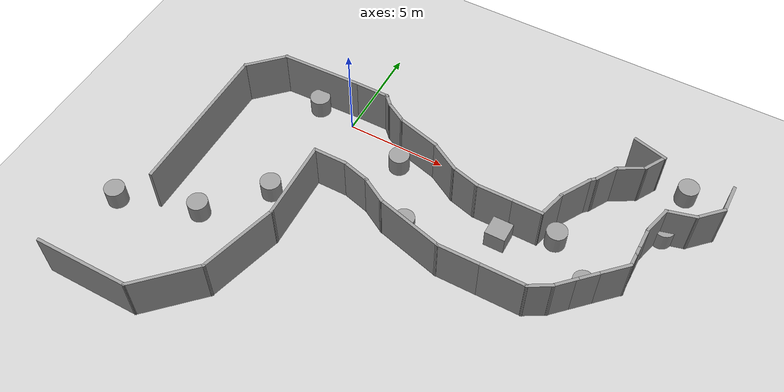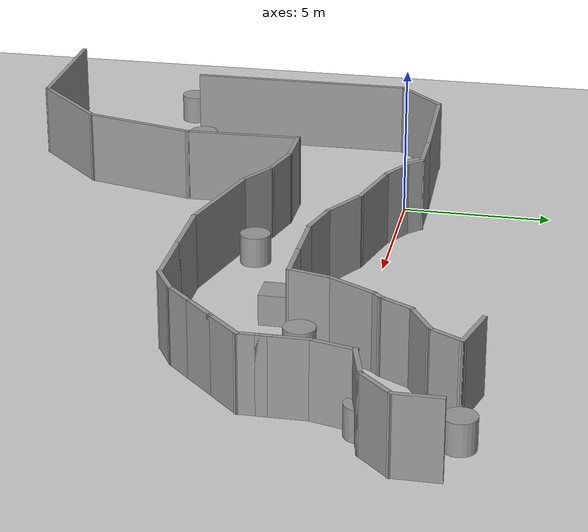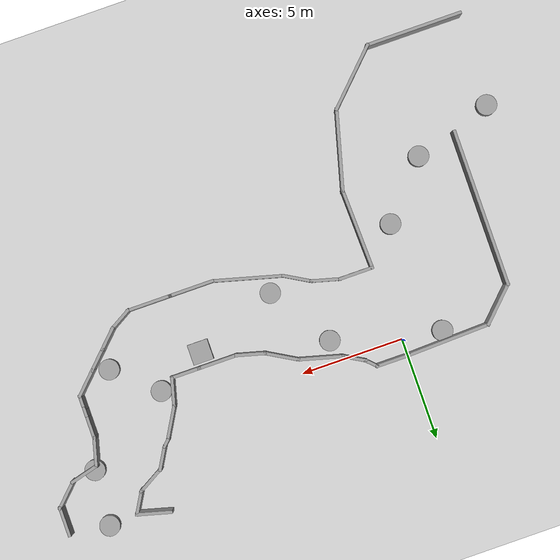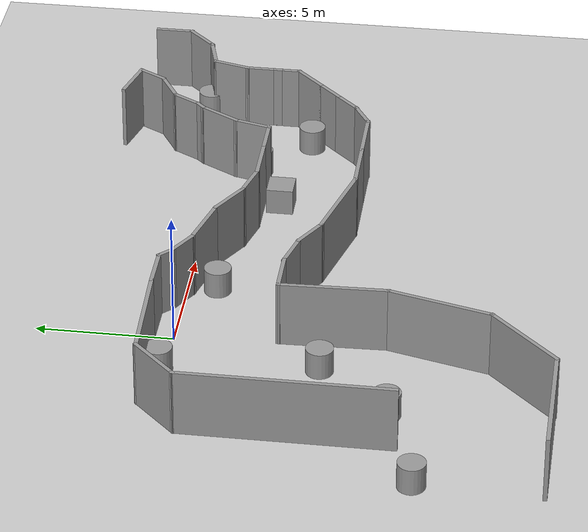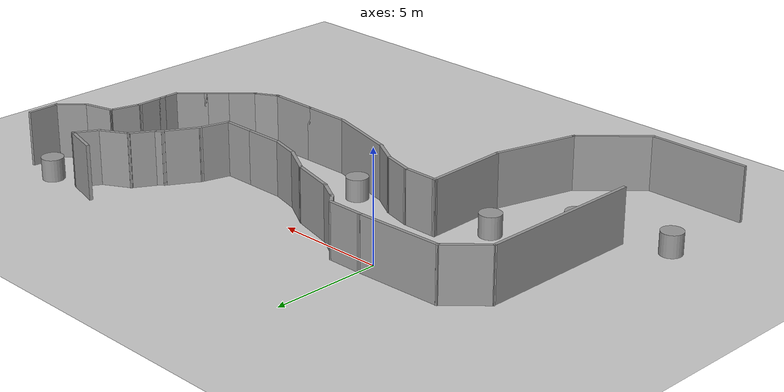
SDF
<sdf version="1.7">
 <world name="default">
  <model name="ground_plane">
   <static>1</static>
   <link name="link">
    <collision name="collision">
     <geometry><plane><normal>0 0 1</normal><size>100 100</size></plane></geometry>
     <surface><friction><ode><mu>100</mu><mu2>50</mu2></ode></friction></surface>
    </collision>
    <visual name="visual">
     <cast_shadows>0</cast_shadows>
     <geometry><plane><normal>0 0 1</normal><size>100 100</size></plane></geometry>
     <material>
      <script><uri>file://media/materials/scripts/gazebo.material</uri><name>Gazebo/Grey</name></script>
     </material>
    </visual>
   </link>
  </model>
  <model name="racetrackgap">
   <pose>0.224585 2.63558 0 0 -0 0</pose>
   <link name="Wall_10">
    <collision name="Wall_10_Collision">
     <geometry><box><size>1.25 0.15 2.5</size></box></geometry>
     <pose>0 0 1.25 0 -0 0</pose>
    </collision>
    <visual name="Wall_10_Visual">
     <pose>0 0 1.25 0 -0 0</pose>
     <geometry><box><size>1.25 0.15 2.5</size></box></geometry>
     <material>
      <script><uri>file://media/materials/scripts/gazebo.material</uri><name>Gazebo/Grey</name></script>
      <ambient>1 1 1 1</ambient>
     </material>
     <meta><layer>0</layer></meta>
    </visual>
    <pose>12.9009 -7.28003 0 0 -0 0.785398</pose>
   </link>
   <link name="Wall_11">
    <collision name="Wall_11_Collision">
     <geometry><box><size>1.25 0.15 2.5</size></box></geometry>
     <pose>0 0 1.25 0 -0 0</pose>
    </collision>
    <visual name="Wall_11_Visual">
     <pose>0 0 1.25 0 -0 0</pose>
     <geometry><box><size>1.25 0.15 2.5</size></box></geometry>
     <material>
      <script><uri>file://media/materials/scripts/gazebo.material</uri><name>Gazebo/Grey</name></script>
      <ambient>1 1 1 1</ambient>
     </material>
     <meta><layer>0</layer></meta>
    </visual>
    <pose>13.6788 -6.50221 0 0 -0 0.785398</pose>
   </link>
   <link name="Wall_117">
    <collision name="Wall_117_Collision">
     <geometry><box><size>7.75 0.15 2.5</size></box></geometry>
     <pose>0 0 1.25 0 -0 0</pose>
    </collision>
    <visual name="Wall_117_Visual">
     <pose>0 0 1.25 0 -0 0</pose>
     <geometry><box><size>7.75 0.15 2.5</size></box></geometry>
     <material>
      <script><uri>file://media/materials/scripts/gazebo.material</uri><name>Gazebo/Grey</name></script>
      <ambient>1 1 1 1</ambient>
     </material>
     <meta><layer>0</layer></meta>
    </visual>
    <pose>-5.71308 -7.29502 0 0 -0 1.5708</pose>
   </link>
   <link name="Wall_118">
    <collision name="Wall_118_Collision">
     <geometry><box><size>2.25 0.15 2.5</size></box></geometry>
     <pose>0 0 1.25 0 -0 0</pose>
    </collision>
    <visual name="Wall_118_Visual">
     <pose>0 0 1.25 0 -0 0</pose>
     <geometry><box><size>2.25 0.15 2.5</size></box></geometry>
     <material>
      <script><uri>file://media/materials/scripts/gazebo.material</uri><name>Gazebo/Grey</name></script>
      <ambient>1 1 1 1</ambient>
     </material>
     <meta><layer>0</layer></meta>
    </visual>
    <pose>-4.97062 -2.75255 0 0 -0 0.785398</pose>
   </link>
   <link name="Wall_119">
    <collision name="Wall_119_Collision">
     <geometry><box><size>4.13259 0.15 2.5</size></box></geometry>
     <pose>0 0 1.25 0 -0 0</pose>
    </collision>
    <visual name="Wall_119_Visual">
     <pose>0 0 1.25 0 -0 0</pose>
     <geometry><box><size>4.13259 0.15 2.5</size></box></geometry>
     <material>
      <script><uri>file://media/materials/scripts/gazebo.material</uri><name>Gazebo/Grey</name></script>
      <ambient>1 1 1 1</ambient>
     </material>
     <meta><layer>0</layer></meta>
    </visual>
    <pose>-2.23793 -1.945 0 0 -0 0.032696</pose>
   </link>
   <link name="Wall_12">
    <collision name="Wall_12_Collision">
     <geometry><box><size>1.5 0.15 2.5</size></box></geometry>
     <pose>0 0 1.25 0 -0 0</pose>
    </collision>
    <visual name="Wall_12_Visual">
     <pose>0 0 1.25 0 -0 0</pose>
     <geometry><box><size>1.5 0.15 2.5</size></box></geometry>
     <material>
      <script><uri>file://media/materials/scripts/gazebo.material</uri><name>Gazebo/Grey</name></script>
      <ambient>1 1 1 1</ambient>
     </material>
     <meta><layer>0</layer></meta>
    </visual>
    <pose>14.545 -5.63601 0 0 -0 0.785398</pose>
   </link>
   <link name="Wall_13">
    <collision name="Wall_13_Collision">
     <geometry><box><size>0.75 0.15 2.5</size></box></geometry>
     <pose>0 0 1.25 0 -0 0</pose>
    </collision>
    <visual name="Wall_13_Visual">
     <pose>0 0 1.25 0 -0 0</pose>
     <geometry><box><size>0.75 0.15 2.5</size></box></geometry>
     <material>
      <script><uri>file://media/materials/scripts/gazebo.material</uri><name>Gazebo/Grey</name></script>
      <ambient>1 1 1 1</ambient>
     </material>
     <meta><layer>0</layer></meta>
    </visual>
    <pose>15.0223 -4.85871 0 0 -0 1.5708</pose>
   </link>
   <link name="Wall_14">
    <collision name="Wall_14_Collision">
     <geometry><box><size>0.5 0.15 2.5</size></box></geometry>
     <pose>0 0 1.25 0 -0 0</pose>
    </collision>
    <visual name="Wall_14_Visual">
     <pose>0 0 1.25 0 -0 0</pose>
     <geometry><box><size>0.5 0.15 2.5</size></box></geometry>
     <material>
      <script><uri>file://media/materials/scripts/gazebo.material</uri><name>Gazebo/Grey</name></script>
      <ambient>1 1 1 1</ambient>
     </material>
     <meta><layer>0</layer></meta>
    </visual>
    <pose>15.0223 -4.38371 0 0 -0 1.5708</pose>
   </link>
   <link name="Wall_15">
    <collision name="Wall_15_Collision">
     <geometry><box><size>1.25 0.15 2.5</size></box></geometry>
     <pose>0 0 1.25 0 -0 0</pose>
    </collision>
    <visual name="Wall_15_Visual">
     <pose>0 0 1.25 0 -0 0</pose>
     <geometry><box><size>1.25 0.15 2.5</size></box></geometry>
     <material>
      <script><uri>file://media/materials/scripts/gazebo.material</uri><name>Gazebo/Grey</name></script>
      <ambient>1 1 1 1</ambient>
     </material>
     <meta><layer>0</layer></meta>
    </visual>
    <pose>15.0223 -3.65871 0 0 -0 1.5708</pose>
   </link>
   <link name="Wall_16">
    <collision name="Wall_16_Collision">
     <geometry><box><size>1.5 0.15 2.5</size></box></geometry>
     <pose>0 0 1.25 0 -0 0</pose>
    </collision>
    <visual name="Wall_16_Visual">
     <pose>0 0 1.25 0 -0 0</pose>
     <geometry><box><size>1.5 0.15 2.5</size></box></geometry>
     <material>
      <script><uri>file://media/materials/scripts/gazebo.material</uri><name>Gazebo/Grey</name></script>
      <ambient>1 1 1 1</ambient>
     </material>
     <meta><layer>0</layer></meta>
    </visual>
    <pose>15.197 -2.45671 0 0 -0 1.309</pose>
   </link>
   <link name="Wall_17">
    <collision name="Wall_17_Collision">
     <geometry><box><size>1.5 0.15 2.5</size></box></geometry>
     <pose>0 0 1.25 0 -0 0</pose>
    </collision>
    <visual name="Wall_17_Visual">
     <pose>0 0 1.25 0 -0 0</pose>
     <geometry><box><size>1.5 0.15 2.5</size></box></geometry>
     <material>
      <script><uri>file://media/materials/scripts/gazebo.material</uri><name>Gazebo/Grey</name></script>
      <ambient>1 1 1 1</ambient>
     </material>
     <meta><layer>0</layer></meta>
    </visual>
    <pose>16.0237 -1.63001 0 0 -0 0.261799</pose>
   </link>
   <link name="Wall_18">
    <collision name="Wall_18_Collision">
     <geometry><box><size>1.5 0.15 2.5</size></box></geometry>
     <pose>0 0 1.25 0 -0 0</pose>
    </collision>
    <visual name="Wall_18_Visual">
     <pose>0 0 1.25 0 -0 0</pose>
     <geometry><box><size>1.5 0.15 2.5</size></box></geometry>
     <material>
      <script><uri>file://media/materials/scripts/gazebo.material</uri><name>Gazebo/Grey</name></script>
      <ambient>1 1 1 1</ambient>
     </material>
     <meta><layer>0</layer></meta>
    </visual>
    <pose>17.153 -0.978009 0 0 -0 0.785398</pose>
   </link>
   <link name="Wall_19">
    <collision name="Wall_19_Collision">
     <geometry><box><size>1.5 0.15 2.5</size></box></geometry>
     <pose>0 0 1.25 0 -0 0</pose>
    </collision>
    <visual name="Wall_19_Visual">
     <pose>0 0 1.25 0 -0 0</pose>
     <geometry><box><size>1.5 0.15 2.5</size></box></geometry>
     <material>
      <script><uri>file://media/materials/scripts/gazebo.material</uri><name>Gazebo/Grey</name></script>
      <ambient>1 1 1 1</ambient>
     </material>
     <meta><layer>0</layer></meta>
    </visual>
    <pose>17.6303 0.174289 0 0 -0 1.5708</pose>
   </link>
   <link name="Wall_3">
    <collision name="Wall_3_Collision">
     <geometry><box><size>1.75 0.15 2.5</size></box></geometry>
     <pose>0 0 1.25 0 -0 0</pose>
    </collision>
    <visual name="Wall_3_Visual">
     <pose>0 0 1.25 0 -0 0</pose>
     <geometry><box><size>1.75 0.15 2.5</size></box></geometry>
     <material>
      <script><uri>file://media/materials/scripts/gazebo.material</uri><name>Gazebo/Grey</name></script>
      <ambient>1 1 1 1</ambient>
     </material>
     <meta><layer>0</layer></meta>
    </visual>
    <pose>0.850427 -6.32749 0 0 -0 0</pose>
   </link>
   <link name="Wall_4">
    <collision name="Wall_4_Collision">
     <geometry><box><size>1.5 0.15 2.5</size></box></geometry>
     <pose>0 0 1.25 0 -0 0</pose>
    </collision>
    <visual name="Wall_4_Visual">
     <pose>0 0 1.25 0 -0 0</pose>
     <geometry><box><size>1.5 0.15 2.5</size></box></geometry>
     <material>
      <script><uri>file://media/materials/scripts/gazebo.material</uri><name>Gazebo/Grey</name></script>
      <ambient>1 1 1 1</ambient>
     </material>
     <meta><layer>0</layer></meta>
    </visual>
    <pose>2.30243 -6.50219 0 0 -0 -0.261799</pose>
   </link>
   <link name="Wall_5">
    <collision name="Wall_5_Collision">
     <geometry><box><size>1.5 0.15 2.5</size></box></geometry>
     <pose>0 0 1.25 0 -0 0</pose>
    </collision>
    <visual name="Wall_5_Visual">
     <pose>0 0 1.25 0 -0 0</pose>
     <geometry><box><size>1.5 0.15 2.5</size></box></geometry>
     <material>
      <script><uri>file://media/materials/scripts/gazebo.material</uri><name>Gazebo/Grey</name></script>
      <ambient>1 1 1 1</ambient>
     </material>
     <meta><layer>0</layer></meta>
    </visual>
    <pose>3.53899 -7.0144 0 0 -0 -0.523599</pose>
   </link>
   <link name="Wall_6">
    <collision name="Wall_6_Collision">
     <geometry><box><size>3.5 0.15 2.5</size></box></geometry>
     <pose>0 0 1.25 0 -0 0</pose>
    </collision>
    <visual name="Wall_6_Visual">
     <pose>0 0 1.25 0 -0 0</pose>
     <geometry><box><size>3.5 0.15 2.5</size></box></geometry>
     <material>
      <script><uri>file://media/materials/scripts/gazebo.material</uri><name>Gazebo/Grey</name></script>
      <ambient>1 1 1 1</ambient>
     </material>
     <meta><layer>0</layer></meta>
    </visual>
    <pose>5.74149 -7.78542 0 0 -0 -0.261799</pose>
   </link>
   <link name="Wall_66">
    <collision name="Wall_66_Collision">
     <geometry><box><size>4.75 0.15 2.5</size></box></geometry>
     <pose>0 0 1.25 0 -0 0</pose>
    </collision>
    <visual name="Wall_66_Visual">
     <pose>0 0 1.25 0 -0 0</pose>
     <geometry><box><size>4.75 0.15 2.5</size></box></geometry>
     <material>
      <script><uri>file://media/materials/scripts/gazebo.material</uri><name>Gazebo/Grey</name></script>
      <ambient>1 1 1 1</ambient>
     </material>
     <meta><layer>0</layer></meta>
    </visual>
    <pose>-5.4985 -16.2859 0 0 -0 0</pose>
   </link>
   <link name="Wall_67">
    <collision name="Wall_67_Collision">
     <geometry><box><size>3.5 0.15 2.5</size></box></geometry>
     <pose>0 0 1.25 0 -0 0</pose>
    </collision>
    <visual name="Wall_67_Visual">
     <pose>0 0 1.25 0 -0 0</pose>
     <geometry><box><size>3.5 0.15 2.5</size></box></geometry>
     <material>
      <script><uri>file://media/materials/scripts/gazebo.material</uri><name>Gazebo/Grey</name></script>
      <ambient>1 1 1 1</ambient>
     </material>
     <meta><layer>0</layer></meta>
    </visual>
    <pose>-2.0141 -15.1015 0 0 -0 0.785398</pose>
   </link>
   <link name="Wall_68">
    <collision name="Wall_68_Collision">
     <geometry><box><size>4 0.15 2.5</size></box></geometry>
     <pose>0 0 1.25 0 -0 0</pose>
    </collision>
    <visual name="Wall_68_Visual">
     <pose>0 0 1.25 0 -0 0</pose>
     <geometry><box><size>4 0.15 2.5</size></box></geometry>
     <material>
      <script><uri>file://media/materials/scripts/gazebo.material</uri><name>Gazebo/Grey</name></script>
      <ambient>1 1 1 1</ambient>
     </material>
     <meta><layer>0</layer></meta>
    </visual>
    <pose>-0.331465 -12.0576 0 0 -0 1.309</pose>
   </link>
   <link name="Wall_69">
    <collision name="Wall_69_Collision">
     <geometry><box><size>4.02249 0.15 2.5</size></box></geometry>
     <pose>0 0 1.25 0 -0 0</pose>
    </collision>
    <visual name="Wall_69_Visual">
     <pose>0 0 1.25 0 -0 0</pose>
     <geometry><box><size>4.02249 0.15 2.5</size></box></geometry>
     <material>
      <script><uri>file://media/materials/scripts/gazebo.material</uri><name>Gazebo/Grey</name></script>
      <ambient>1 1 1 1</ambient>
     </material>
     <meta><layer>0</layer></meta>
    </visual>
    <pose>0.108594 -8.26286 0 0 -0 1.60084</pose>
   </link>
   <link name="Wall_7">
    <collision name="Wall_7_Collision">
     <geometry><box><size>2.25 0.15 2.5</size></box></geometry>
     <pose>0 0 1.25 0 -0 0</pose>
    </collision>
    <visual name="Wall_7_Visual">
     <pose>0 0 1.25 0 -0 0</pose>
     <geometry><box><size>2.25 0.15 2.5</size></box></geometry>
     <material>
      <script><uri>file://media/materials/scripts/gazebo.material</uri><name>Gazebo/Grey</name></script>
      <ambient>1 1 1 1</ambient>
     </material>
     <meta><layer>0</layer></meta>
    </visual>
    <pose>8.40941 -8.21894 0 0 -0 0</pose>
   </link>
   <link name="Wall_71">
    <collision name="Wall_71_Collision">
     <geometry><box><size>1.75 0.15 2.5</size></box></geometry>
     <pose>0 0 1.25 0 -0 0</pose>
    </collision>
    <visual name="Wall_71_Visual">
     <pose>0 0 1.25 0 -0 0</pose>
     <geometry><box><size>1.75 0.15 2.5</size></box></geometry>
     <material>
      <script><uri>file://media/materials/scripts/gazebo.material</uri><name>Gazebo/Grey</name></script>
      <ambient>1 1 1 1</ambient>
     </material>
     <meta><layer>0</layer></meta>
    </visual>
    <pose>0.552304 -1.8799 0 0 -0 0</pose>
   </link>
   <link name="Wall_72">
    <collision name="Wall_72_Collision">
     <geometry><box><size>0.75 0.15 2.5</size></box></geometry>
     <pose>0 0 1.25 0 -0 0</pose>
    </collision>
    <visual name="Wall_72_Visual">
     <pose>0 0 1.25 0 -0 0</pose>
     <geometry><box><size>0.75 0.15 2.5</size></box></geometry>
     <material>
      <script><uri>file://media/materials/scripts/gazebo.material</uri><name>Gazebo/Grey</name></script>
      <ambient>1 1 1 1</ambient>
     </material>
     <meta><layer>0</layer></meta>
    </visual>
    <pose>1.56444 -2.09203 0 0 -0 -0.785398</pose>
   </link>
   <link name="Wall_73">
    <collision name="Wall_73_Collision">
     <geometry><box><size>1.25 0.15 2.5</size></box></geometry>
     <pose>0 0 1.25 0 -0 0</pose>
    </collision>
    <visual name="Wall_73_Visual">
     <pose>0 0 1.25 0 -0 0</pose>
     <geometry><box><size>1.25 0.15 2.5</size></box></geometry>
     <material>
      <script><uri>file://media/materials/scripts/gazebo.material</uri><name>Gazebo/Grey</name></script>
      <ambient>1 1 1 1</ambient>
     </material>
     <meta><layer>0</layer></meta>
    </visual>
    <pose>2.25288 -2.57917 0 0 -0 -0.523599</pose>
   </link>
   <link name="Wall_74">
    <collision name="Wall_74_Collision">
     <geometry><box><size>2.25 0.15 2.5</size></box></geometry>
     <pose>0 0 1.25 0 -0 0</pose>
    </collision>
    <visual name="Wall_74_Visual">
     <pose>0 0 1.25 0 -0 0</pose>
     <geometry><box><size>2.25 0.15 2.5</size></box></geometry>
     <material>
      <script><uri>file://media/materials/scripts/gazebo.material</uri><name>Gazebo/Grey</name></script>
      <ambient>1 1 1 1</ambient>
     </material>
     <meta><layer>0</layer></meta>
    </visual>
    <pose>3.74342 -3.12593 0 0 -0 -0.261799</pose>
   </link>
   <link name="Wall_75">
    <collision name="Wall_75_Collision">
     <geometry><box><size>1.75 0.15 2.5</size></box></geometry>
     <pose>0 0 1.25 0 -0 0</pose>
    </collision>
    <visual name="Wall_75_Visual">
     <pose>0 0 1.25 0 -0 0</pose>
     <geometry><box><size>1.75 0.15 2.5</size></box></geometry>
     <material>
      <script><uri>file://media/materials/scripts/gazebo.material</uri><name>Gazebo/Grey</name></script>
      <ambient>1 1 1 1</ambient>
     </material>
     <meta><layer>0</layer></meta>
    </visual>
    <pose>5.45046 -3.79769 0 0 -0 -0.523599</pose>
   </link>
   <link name="Wall_76">
    <collision name="Wall_76_Collision">
     <geometry><box><size>1.5 0.15 2.5</size></box></geometry>
     <pose>0 0 1.25 0 -0 0</pose>
    </collision>
    <visual name="Wall_76_Visual">
     <pose>0 0 1.25 0 -0 0</pose>
     <geometry><box><size>1.5 0.15 2.5</size></box></geometry>
     <material>
      <script><uri>file://media/materials/scripts/gazebo.material</uri><name>Gazebo/Grey</name></script>
      <ambient>1 1 1 1</ambient>
     </material>
     <meta><layer>0</layer></meta>
    </visual>
    <pose>6.79528 -4.37239 0 0 -0 -0.261799</pose>
   </link>
   <link name="Wall_77">
    <collision name="Wall_77_Collision">
     <geometry><box><size>2 0.15 2.5</size></box></geometry>
     <pose>0 0 1.25 0 -0 0</pose>
    </collision>
    <visual name="Wall_77_Visual">
     <pose>0 0 1.25 0 -0 0</pose>
     <geometry><box><size>2 0.15 2.5</size></box></geometry>
     <material>
      <script><uri>file://media/materials/scripts/gazebo.material</uri><name>Gazebo/Grey</name></script>
      <ambient>1 1 1 1</ambient>
     </material>
     <meta><layer>0</layer></meta>
    </visual>
    <pose>8.37228 -4.54709 0 0 -0 0</pose>
   </link>
   <link name="Wall_78">
    <collision name="Wall_78_Collision">
     <geometry><box><size>1.5 0.15 2.5</size></box></geometry>
     <pose>0 0 1.25 0 -0 0</pose>
    </collision>
    <visual name="Wall_78_Visual">
     <pose>0 0 1.25 0 -0 0</pose>
     <geometry><box><size>1.5 0.15 2.5</size></box></geometry>
     <material>
      <script><uri>file://media/materials/scripts/gazebo.material</uri><name>Gazebo/Grey</name></script>
      <ambient>1 1 1 1</ambient>
     </material>
     <meta><layer>0</layer></meta>
    </visual>
    <pose>9.97228 -4.54709 0 0 -0 0</pose>
   </link>
   <link name="Wall_79">
    <collision name="Wall_79_Collision">
     <geometry><box><size>1.5 0.15 2.5</size></box></geometry>
     <pose>0 0 1.25 0 -0 0</pose>
    </collision>
    <visual name="Wall_79_Visual">
     <pose>0 0 1.25 0 -0 0</pose>
     <geometry><box><size>1.5 0.15 2.5</size></box></geometry>
     <material>
      <script><uri>file://media/materials/scripts/gazebo.material</uri><name>Gazebo/Grey</name></script>
      <ambient>1 1 1 1</ambient>
     </material>
     <meta><layer>0</layer></meta>
    </visual>
    <pose>10.822 -3.89509 0 0 -0 1.309</pose>
   </link>
   <link name="Wall_8">
    <collision name="Wall_8_Collision">
     <geometry><box><size>2.25 0.15 2.5</size></box></geometry>
     <pose>0 0 1.25 0 -0 0</pose>
    </collision>
    <visual name="Wall_8_Visual">
     <pose>0 0 1.25 0 -0 0</pose>
     <geometry><box><size>2.25 0.15 2.5</size></box></geometry>
     <material>
      <script><uri>file://media/materials/scripts/gazebo.material</uri><name>Gazebo/Grey</name></script>
      <ambient>1 1 1 1</ambient>
     </material>
     <meta><layer>0</layer></meta>
    </visual>
    <pose>10.5094 -8.21894 0 0 -0 0</pose>
   </link>
   <link name="Wall_80">
    <collision name="Wall_80_Collision">
     <geometry><box><size>1.75 0.15 2.5</size></box></geometry>
     <pose>0 0 1.25 0 -0 0</pose>
    </collision>
    <visual name="Wall_80_Visual">
     <pose>0 0 1.25 0 -0 0</pose>
     <geometry><box><size>1.75 0.15 2.5</size></box></geometry>
     <material>
      <script><uri>file://media/materials/scripts/gazebo.material</uri><name>Gazebo/Grey</name></script>
      <ambient>1 1 1 1</ambient>
     </material>
     <meta><layer>0</layer></meta>
    </visual>
    <pose>11.3967 -2.55027 0 0 -0 1.0472</pose>
   </link>
   <link name="Wall_81">
    <collision name="Wall_81_Collision">
     <geometry><box><size>0.5 0.15 2.5</size></box></geometry>
     <pose>0 0 1.25 0 -0 0</pose>
    </collision>
    <visual name="Wall_81_Visual">
     <pose>0 0 1.25 0 -0 0</pose>
     <geometry><box><size>0.5 0.15 2.5</size></box></geometry>
     <material>
      <script><uri>file://media/materials/scripts/gazebo.material</uri><name>Gazebo/Grey</name></script>
      <ambient>1 1 1 1</ambient>
     </material>
     <meta><layer>0</layer></meta>
    </visual>
    <pose>11.9204 -1.73371 0 0 -0 0.785398</pose>
   </link>
   <link name="Wall_82">
    <collision name="Wall_82_Collision">
     <geometry><box><size>1.25 0.15 2.5</size></box></geometry>
     <pose>0 0 1.25 0 -0 0</pose>
    </collision>
    <visual name="Wall_82_Visual">
     <pose>0 0 1.25 0 -0 0</pose>
     <geometry><box><size>1.25 0.15 2.5</size></box></geometry>
     <material>
      <script><uri>file://media/materials/scripts/gazebo.material</uri><name>Gazebo/Grey</name></script>
      <ambient>1 1 1 1</ambient>
     </material>
     <meta><layer>0</layer></meta>
    </visual>
    <pose>12.3192 -1.13365 0 0 -0 1.0472</pose>
   </link>
   <link name="Wall_83">
    <collision name="Wall_83_Collision">
     <geometry><box><size>1.5 0.15 2.5</size></box></geometry>
     <pose>0 0 1.25 0 -0 0</pose>
    </collision>
    <visual name="Wall_83_Visual">
     <pose>0 0 1.25 0 -0 0</pose>
     <geometry><box><size>1.5 0.15 2.5</size></box></geometry>
     <material>
      <script><uri>file://media/materials/scripts/gazebo.material</uri><name>Gazebo/Grey</name></script>
      <ambient>1 1 1 1</ambient>
     </material>
     <meta><layer>0</layer></meta>
    </visual>
    <pose>13.1787 -0.319836 0 0 -0 0.523599</pose>
   </link>
   <link name="Wall_84">
    <collision name="Wall_84_Collision">
     <geometry><box><size>1.25 0.15 2.5</size></box></geometry>
     <pose>0 0 1.25 0 -0 0</pose>
    </collision>
    <visual name="Wall_84_Visual">
     <pose>0 0 1.25 0 -0 0</pose>
     <geometry><box><size>1.25 0.15 2.5</size></box></geometry>
     <material>
      <script><uri>file://media/materials/scripts/gazebo.material</uri><name>Gazebo/Grey</name></script>
      <ambient>1 1 1 1</ambient>
     </material>
     <meta><layer>0</layer></meta>
    </visual>
    <pose>14.0383 0.493978 0 0 -0 1.0472</pose>
   </link>
   <link name="Wall_85">
    <collision name="Wall_85_Collision">
     <geometry><box><size>1.75 0.15 2.5</size></box></geometry>
     <pose>0 0 1.25 0 -0 0</pose>
    </collision>
    <visual name="Wall_85_Visual">
     <pose>0 0 1.25 0 -0 0</pose>
     <geometry><box><size>1.75 0.15 2.5</size></box></geometry>
     <material>
      <script><uri>file://media/materials/scripts/gazebo.material</uri><name>Gazebo/Grey</name></script>
      <ambient>1 1 1 1</ambient>
     </material>
     <meta><layer>0</layer></meta>
    </visual>
    <pose>13.5406 1.17735 0 0 -0 2.87979</pose>
   </link>
   <link name="Wall_9">
    <collision name="Wall_9_Collision">
     <geometry><box><size>1.25 0.15 2.5</size></box></geometry>
     <pose>0 0 1.25 0 -0 0</pose>
    </collision>
    <visual name="Wall_9_Visual">
     <pose>0 0 1.25 0 -0 0</pose>
     <geometry><box><size>1.25 0.15 2.5</size></box></geometry>
     <material>
      <script><uri>file://media/materials/scripts/gazebo.material</uri><name>Gazebo/Grey</name></script>
      <ambient>1 1 1 1</ambient>
     </material>
     <meta><layer>0</layer></meta>
    </visual>
    <pose>12.0357 -7.94394 0 0 -0 0.523599</pose>
   </link>
   <static>1</static>
  </model>
  <model name="objetracetrack">
   <link name="link_0">
    <inertial>
     <mass>1</mass>
     <inertia><ixx>0.145833</ixx><ixy>0</ixy><ixz>0</ixz><iyy>0.145833</iyy><iyz>0</iyz><izz>0.125</izz></inertia>
    </inertial>
    <pose>5.01054 -3.20804 0 0 -0 0</pose>
    <visual name="visual">
     <geometry><cylinder><radius>0.5</radius><length>1</length></cylinder></geometry>
     <material>
      <lighting>1</lighting>
      <script><uri>file://media/materials/scripts/gazebo.material</uri><name>Gazebo/Grey</name></script>
      <shader type="pixel"/>
     </material>
    </visual>
    <collision name="collision">
     <geometry><cylinder><radius>0.5</radius><length>1</length></cylinder></geometry>
     <surface>
      <friction>
       <ode><mu>1</mu><mu2>1</mu2><fdir1>0 0 0</fdir1><slip1>0</slip1><slip2>0</slip2></ode>
       <torsional>
        <coefficient>1</coefficient>
        <patch_radius>0</patch_radius>
        <surface_radius>0</surface_radius>
        <use_patch_radius>1</use_patch_radius>
        <ode><slip>0</slip></ode>
       </torsional>
      </friction>
      <bounce><restitution_coefficient>0</restitution_coefficient><threshold>1e+06</threshold></bounce>
      <contact>
       <collide_without_contact>0</collide_without_contact>
       <collide_without_contact_bitmask>1</collide_without_contact_bitmask>
       <collide_bitmask>1</collide_bitmask>
       <ode>
        <soft_cfm>0</soft_cfm>
        <soft_erp>0.2</soft_erp>
        <kp>1e+13</kp>
        <kd>1</kd>
        <max_vel>0.01</max_vel>
        <min_depth>0</min_depth>
       </ode>
       <bullet>
        <split_impulse>1</split_impulse>
        <split_impulse_penetration_threshold>-0.01</split_impulse_penetration_threshold>
        <soft_cfm>0</soft_cfm>
        <soft_erp>0.2</soft_erp>
        <kp>1e+13</kp>
        <kd>1</kd>
       </bullet>
      </contact>
     </surface>
    </collision>
   </link>
   <link name="link_1">
    <inertial>
     <mass>1</mass>
     <inertia><ixx>0.145833</ixx><ixy>0</ixy><ixz>0</ixz><iyy>0.145833</iyy><iyz>0</iyz><izz>0.125</izz></inertia>
    </inertial>
    <pose>6.93797 -6.26956 0 0 -0 0</pose>
    <visual name="visual">
     <geometry><cylinder><radius>0.5</radius><length>1</length></cylinder></geometry>
     <material>
      <lighting>1</lighting>
      <script><uri>file://media/materials/scripts/gazebo.material</uri><name>Gazebo/Grey</name></script>
      <shader type="pixel"/>
     </material>
    </visual>
    <collision name="collision">
     <geometry><cylinder><radius>0.5</radius><length>1</length></cylinder></geometry>
     <surface>
      <friction>
       <ode><mu>1</mu><mu2>1</mu2><fdir1>0 0 0</fdir1><slip1>0</slip1><slip2>0</slip2></ode>
       <torsional>
        <coefficient>1</coefficient>
        <patch_radius>0</patch_radius>
        <surface_radius>0</surface_radius>
        <use_patch_radius>1</use_patch_radius>
        <ode><slip>0</slip></ode>
       </torsional>
      </friction>
      <bounce><restitution_coefficient>0</restitution_coefficient><threshold>1e+06</threshold></bounce>
      <contact>
       <collide_without_contact>0</collide_without_contact>
       <collide_without_contact_bitmask>1</collide_without_contact_bitmask>
       <collide_bitmask>1</collide_bitmask>
       <ode>
        <soft_cfm>0</soft_cfm>
        <soft_erp>0.2</soft_erp>
        <kp>1e+13</kp>
        <kd>1</kd>
        <max_vel>0.01</max_vel>
        <min_depth>0</min_depth>
       </ode>
       <bullet>
        <split_impulse>1</split_impulse>
        <split_impulse_penetration_threshold>-0.01</split_impulse_penetration_threshold>
        <soft_cfm>0</soft_cfm>
        <soft_erp>0.2</soft_erp>
        <kp>1e+13</kp>
        <kd>1</kd>
       </bullet>
      </contact>
     </surface>
    </collision>
   </link>
   <link name="link_28">
    <inertial>
     <mass>1</mass>
     <inertia><ixx>0.145833</ixx><ixy>0</ixy><ixz>0</ixz><iyy>0.145833</iyy><iyz>0</iyz><izz>0.125</izz></inertia>
    </inertial>
    <pose>-5.69559 -11.3145 0 0 -0 0</pose>
    <visual name="visual">
     <geometry><cylinder><radius>0.5</radius><length>1</length></cylinder></geometry>
     <material>
      <lighting>1</lighting>
      <script><uri>file://media/materials/scripts/gazebo.material</uri><name>Gazebo/Grey</name></script>
      <shader type="pixel"/>
     </material>
    </visual>
    <collision name="collision">
     <geometry><cylinder><radius>0.5</radius><length>1</length></cylinder></geometry>
     <surface>
      <friction>
       <ode><mu>1</mu><mu2>1</mu2><fdir1>0 0 0</fdir1><slip1>0</slip1><slip2>0</slip2></ode>
       <torsional>
        <coefficient>1</coefficient>
        <patch_radius>0</patch_radius>
        <surface_radius>0</surface_radius>
        <use_patch_radius>1</use_patch_radius>
        <ode><slip>0</slip></ode>
       </torsional>
      </friction>
      <bounce><restitution_coefficient>0</restitution_coefficient><threshold>1e+06</threshold></bounce>
      <contact>
       <collide_without_contact>0</collide_without_contact>
       <collide_without_contact_bitmask>1</collide_without_contact_bitmask>
       <collide_bitmask>1</collide_bitmask>
       <ode>
        <soft_cfm>0</soft_cfm>
        <soft_erp>0.2</soft_erp>
        <kp>1e+13</kp>
        <kd>1</kd>
        <max_vel>0.01</max_vel>
        <min_depth>0</min_depth>
       </ode>
       <bullet>
        <split_impulse>1</split_impulse>
        <split_impulse_penetration_threshold>-0.01</split_impulse_penetration_threshold>
        <soft_cfm>0</soft_cfm>
        <soft_erp>0.2</soft_erp>
        <kp>1e+13</kp>
        <kd>1</kd>
       </bullet>
      </contact>
     </surface>
    </collision>
   </link>
   <link name="link_3">
    <inertial>
     <mass>1</mass>
     <inertia>
      <ixx>0.166667</ixx>
      <ixy>0</ixy>
      <ixz>0</ixz>
      <iyy>0.166667</iyy>
      <iyz>0</iyz>
      <izz>0.166667</izz>
     </inertia>
    </inertial>
    <pose>10.9898 -4.72561 0 0 -0 0</pose>
    <visual name="visual">
     <geometry><box><size>1 1 1</size></box></geometry>
     <material>
      <lighting>1</lighting>
      <script><uri>file://media/materials/scripts/gazebo.material</uri><name>Gazebo/Grey</name></script>
      <shader type="pixel"/>
     </material>
    </visual>
    <collision name="collision">
     <geometry><box><size>1 1 1</size></box></geometry>
     <surface>
      <friction>
       <ode><mu>1</mu><mu2>1</mu2><fdir1>0 0 0</fdir1><slip1>0</slip1><slip2>0</slip2></ode>
       <torsional>
        <coefficient>1</coefficient>
        <patch_radius>0</patch_radius>
        <surface_radius>0</surface_radius>
        <use_patch_radius>1</use_patch_radius>
        <ode><slip>0</slip></ode>
       </torsional>
      </friction>
      <bounce><restitution_coefficient>0</restitution_coefficient><threshold>1e+06</threshold></bounce>
      <contact>
       <collide_without_contact>0</collide_without_contact>
       <collide_without_contact_bitmask>1</collide_without_contact_bitmask>
       <collide_bitmask>1</collide_bitmask>
       <ode>
        <soft_cfm>0</soft_cfm>
        <soft_erp>0.2</soft_erp>
        <kp>1e+13</kp>
        <kd>1</kd>
        <max_vel>0.01</max_vel>
        <min_depth>0</min_depth>
       </ode>
       <bullet>
        <split_impulse>1</split_impulse>
        <split_impulse_penetration_threshold>-0.01</split_impulse_penetration_threshold>
        <soft_cfm>0</soft_cfm>
        <soft_erp>0.2</soft_erp>
        <kp>1e+13</kp>
        <kd>1</kd>
       </bullet>
      </contact>
     </surface>
    </collision>
   </link>
   <link name="link_33">
    <inertial>
     <mass>1</mass>
     <inertia><ixx>0.145833</ixx><ixy>0</ixy><ixz>0</ixz><iyy>0.145833</iyy><iyz>0</iyz><izz>0.125</izz></inertia>
    </inertial>
    <pose>-1.85245 -10.087 0 0 -0 0</pose>
    <visual name="visual">
     <geometry><cylinder><radius>0.5</radius><length>1</length></cylinder></geometry>
     <material>
      <lighting>1</lighting>
      <script><uri>file://media/materials/scripts/gazebo.material</uri><name>Gazebo/Grey</name></script>
      <shader type="pixel"/>
     </material>
    </visual>
    <collision name="collision">
     <geometry><cylinder><radius>0.5</radius><length>1</length></cylinder></geometry>
     <surface>
      <friction>
       <ode><mu>1</mu><mu2>1</mu2><fdir1>0 0 0</fdir1><slip1>0</slip1><slip2>0</slip2></ode>
       <torsional>
        <coefficient>1</coefficient>
        <patch_radius>0</patch_radius>
        <surface_radius>0</surface_radius>
        <use_patch_radius>1</use_patch_radius>
        <ode><slip>0</slip></ode>
       </torsional>
      </friction>
      <bounce><restitution_coefficient>0</restitution_coefficient><threshold>1e+06</threshold></bounce>
      <contact>
       <collide_without_contact>0</collide_without_contact>
       <collide_without_contact_bitmask>1</collide_without_contact_bitmask>
       <collide_bitmask>1</collide_bitmask>
       <ode>
        <soft_cfm>0</soft_cfm>
        <soft_erp>0.2</soft_erp>
        <kp>1e+13</kp>
        <kd>1</kd>
        <max_vel>0.01</max_vel>
        <min_depth>0</min_depth>
       </ode>
       <bullet>
        <split_impulse>1</split_impulse>
        <split_impulse_penetration_threshold>-0.01</split_impulse_penetration_threshold>
        <soft_cfm>0</soft_cfm>
        <soft_erp>0.2</soft_erp>
        <kp>1e+13</kp>
        <kd>1</kd>
       </bullet>
      </contact>
     </surface>
    </collision>
   </link>
   <link name="link_34">
    <inertial>
     <mass>1</mass>
     <inertia><ixx>0.145833</ixx><ixy>0</ixy><ixz>0</ixz><iyy>0.145833</iyy><iyz>0</iyz><izz>0.125</izz></inertia>
    </inertial>
    <pose>0.465722 -7.48561 0 0 -0 0</pose>
    <visual name="visual">
     <geometry><cylinder><radius>0.5</radius><length>1</length></cylinder></geometry>
     <material>
      <lighting>1</lighting>
      <script><uri>file://media/materials/scripts/gazebo.material</uri><name>Gazebo/Grey</name></script>
      <shader type="pixel"/>
     </material>
    </visual>
    <collision name="collision">
     <geometry><cylinder><radius>0.5</radius><length>1</length></cylinder></geometry>
     <surface>
      <friction>
       <ode><mu>1</mu><mu2>1</mu2><fdir1>0 0 0</fdir1><slip1>0</slip1><slip2>0</slip2></ode>
       <torsional>
        <coefficient>1</coefficient>
        <patch_radius>0</patch_radius>
        <surface_radius>0</surface_radius>
        <use_patch_radius>1</use_patch_radius>
        <ode><slip>0</slip></ode>
       </torsional>
      </friction>
      <bounce><restitution_coefficient>0</restitution_coefficient><threshold>1e+06</threshold></bounce>
      <contact>
       <collide_without_contact>0</collide_without_contact>
       <collide_without_contact_bitmask>1</collide_without_contact_bitmask>
       <collide_bitmask>1</collide_bitmask>
       <ode>
        <soft_cfm>0</soft_cfm>
        <soft_erp>0.2</soft_erp>
        <kp>1e+13</kp>
        <kd>1</kd>
        <max_vel>0.01</max_vel>
        <min_depth>0</min_depth>
       </ode>
       <bullet>
        <split_impulse>1</split_impulse>
        <split_impulse_penetration_threshold>-0.01</split_impulse_penetration_threshold>
        <soft_cfm>0</soft_cfm>
        <soft_erp>0.2</soft_erp>
        <kp>1e+13</kp>
        <kd>1</kd>
       </bullet>
      </contact>
     </surface>
    </collision>
   </link>
   <link name="link_35">
    <inertial>
     <mass>1</mass>
     <inertia><ixx>0.145833</ixx><ixy>0</ixy><ixz>0</ixz><iyy>0.145833</iyy><iyz>0</iyz><izz>0.125</izz></inertia>
    </inertial>
    <pose>-0.195645 -1.89751 0 0 -0 0</pose>
    <visual name="visual">
     <geometry><cylinder><radius>0.5</radius><length>1</length></cylinder></geometry>
     <material>
      <lighting>1</lighting>
      <script><uri>file://media/materials/scripts/gazebo.material</uri><name>Gazebo/Grey</name></script>
      <shader type="pixel"/>
     </material>
    </visual>
    <collision name="collision">
     <geometry><cylinder><radius>0.5</radius><length>1</length></cylinder></geometry>
     <surface>
      <friction>
       <ode><mu>1</mu><mu2>1</mu2><fdir1>0 0 0</fdir1><slip1>0</slip1><slip2>0</slip2></ode>
       <torsional>
        <coefficient>1</coefficient>
        <patch_radius>0</patch_radius>
        <surface_radius>0</surface_radius>
        <use_patch_radius>1</use_patch_radius>
        <ode><slip>0</slip></ode>
       </torsional>
      </friction>
      <bounce><restitution_coefficient>0</restitution_coefficient><threshold>1e+06</threshold></bounce>
      <contact>
       <collide_without_contact>0</collide_without_contact>
       <collide_without_contact_bitmask>1</collide_without_contact_bitmask>
       <collide_bitmask>1</collide_bitmask>
       <ode>
        <soft_cfm>0</soft_cfm>
        <soft_erp>0.2</soft_erp>
        <kp>1e+13</kp>
        <kd>1</kd>
        <max_vel>0.01</max_vel>
        <min_depth>0</min_depth>
       </ode>
       <bullet>
        <split_impulse>1</split_impulse>
        <split_impulse_penetration_threshold>-0.01</split_impulse_penetration_threshold>
        <soft_cfm>0</soft_cfm>
        <soft_erp>0.2</soft_erp>
        <kp>1e+13</kp>
        <kd>1</kd>
       </bullet>
      </contact>
     </surface>
    </collision>
   </link>
   <link name="link_5">
    <inertial>
     <mass>1</mass>
     <inertia><ixx>0.145833</ixx><ixy>0</ixy><ixz>0</ixz><iyy>0.145833</iyy><iyz>0</iyz><izz>0.125</izz></inertia>
    </inertial>
    <pose>15.3527 -5.36685 0 0 -0 0</pose>
    <visual name="visual">
     <geometry><cylinder><radius>0.5</radius><length>1</length></cylinder></geometry>
     <material>
      <lighting>1</lighting>
      <script><uri>file://media/materials/scripts/gazebo.material</uri><name>Gazebo/Grey</name></script>
      <shader type="pixel"/>
     </material>
    </visual>
    <collision name="collision">
     <geometry><cylinder><radius>0.5</radius><length>1</length></cylinder></geometry>
     <surface>
      <friction>
       <ode><mu>1</mu><mu2>1</mu2><fdir1>0 0 0</fdir1><slip1>0</slip1><slip2>0</slip2></ode>
       <torsional>
        <coefficient>1</coefficient>
        <patch_radius>0</patch_radius>
        <surface_radius>0</surface_radius>
        <use_patch_radius>1</use_patch_radius>
        <ode><slip>0</slip></ode>
       </torsional>
      </friction>
      <bounce><restitution_coefficient>0</restitution_coefficient><threshold>1e+06</threshold></bounce>
      <contact>
       <collide_without_contact>0</collide_without_contact>
       <collide_without_contact_bitmask>1</collide_without_contact_bitmask>
       <collide_bitmask>1</collide_bitmask>
       <ode>
        <soft_cfm>0</soft_cfm>
        <soft_erp>0.2</soft_erp>
        <kp>1e+13</kp>
        <kd>1</kd>
        <max_vel>0.01</max_vel>
        <min_depth>0</min_depth>
       </ode>
       <bullet>
        <split_impulse>1</split_impulse>
        <split_impulse_penetration_threshold>-0.01</split_impulse_penetration_threshold>
        <soft_cfm>0</soft_cfm>
        <soft_erp>0.2</soft_erp>
        <kp>1e+13</kp>
        <kd>1</kd>
       </bullet>
      </contact>
     </surface>
    </collision>
   </link>
   <link name="link_6">
    <inertial>
     <mass>1</mass>
     <inertia><ixx>0.145833</ixx><ixy>0</ixy><ixz>0</ixz><iyy>0.145833</iyy><iyz>0</iyz><izz>0.125</izz></inertia>
    </inertial>
    <pose>13.3487 -3.58773 0 0 -0 0</pose>
    <visual name="visual">
     <geometry><cylinder><radius>0.5</radius><length>1</length></cylinder></geometry>
     <material>
      <lighting>1</lighting>
      <script><uri>file://media/materials/scripts/gazebo.material</uri><name>Gazebo/Grey</name></script>
      <shader type="pixel"/>
     </material>
    </visual>
    <collision name="collision">
     <geometry><cylinder><radius>0.5</radius><length>1</length></cylinder></geometry>
     <surface>
      <friction>
       <ode><mu>1</mu><mu2>1</mu2><fdir1>0 0 0</fdir1><slip1>0</slip1><slip2>0</slip2></ode>
       <torsional>
        <coefficient>1</coefficient>
        <patch_radius>0</patch_radius>
        <surface_radius>0</surface_radius>
        <use_patch_radius>1</use_patch_radius>
        <ode><slip>0</slip></ode>
       </torsional>
      </friction>
      <bounce><restitution_coefficient>0</restitution_coefficient><threshold>1e+06</threshold></bounce>
      <contact>
       <collide_without_contact>0</collide_without_contact>
       <collide_without_contact_bitmask>1</collide_without_contact_bitmask>
       <collide_bitmask>1</collide_bitmask>
       <ode>
        <soft_cfm>0</soft_cfm>
        <soft_erp>0.2</soft_erp>
        <kp>1e+13</kp>
        <kd>1</kd>
        <max_vel>0.01</max_vel>
        <min_depth>0</min_depth>
       </ode>
       <bullet>
        <split_impulse>1</split_impulse>
        <split_impulse_penetration_threshold>-0.01</split_impulse_penetration_threshold>
        <soft_cfm>0</soft_cfm>
        <soft_erp>0.2</soft_erp>
        <kp>1e+13</kp>
        <kd>1</kd>
       </bullet>
      </contact>
     </surface>
    </collision>
   </link>
   <link name="link_7">
    <inertial>
     <mass>1</mass>
     <inertia><ixx>0.145833</ixx><ixy>0</ixy><ixz>0</ixz><iyy>0.145833</iyy><iyz>0</iyz><izz>0.125</izz></inertia>
    </inertial>
    <pose>17.5537 -1.07995 0 0 -0 0</pose>
    <visual name="visual">
     <geometry><cylinder><radius>0.5</radius><length>1</length></cylinder></geometry>
     <material>
      <lighting>1</lighting>
      <script><uri>file://media/materials/scripts/gazebo.material</uri><name>Gazebo/Grey</name></script>
      <shader type="pixel"/>
     </material>
    </visual>
    <collision name="collision">
     <geometry><cylinder><radius>0.5</radius><length>1</length></cylinder></geometry>
     <surface>
      <friction>
       <ode><mu>1</mu><mu2>1</mu2><fdir1>0 0 0</fdir1><slip1>0</slip1><slip2>0</slip2></ode>
       <torsional>
        <coefficient>1</coefficient>
        <patch_radius>0</patch_radius>
        <surface_radius>0</surface_radius>
        <use_patch_radius>1</use_patch_radius>
        <ode><slip>0</slip></ode>
       </torsional>
      </friction>
      <bounce><restitution_coefficient>0</restitution_coefficient><threshold>1e+06</threshold></bounce>
      <contact>
       <collide_without_contact>0</collide_without_contact>
       <collide_without_contact_bitmask>1</collide_without_contact_bitmask>
       <collide_bitmask>1</collide_bitmask>
       <ode>
        <soft_cfm>0</soft_cfm>
        <soft_erp>0.2</soft_erp>
        <kp>1e+13</kp>
        <kd>1</kd>
        <max_vel>0.01</max_vel>
        <min_depth>0</min_depth>
       </ode>
       <bullet>
        <split_impulse>1</split_impulse>
        <split_impulse_penetration_threshold>-0.01</split_impulse_penetration_threshold>
        <soft_cfm>0</soft_cfm>
        <soft_erp>0.2</soft_erp>
        <kp>1e+13</kp>
        <kd>1</kd>
       </bullet>
      </contact>
     </surface>
    </collision>
   </link>
   <link name="link_8">
    <inertial>
     <mass>1</mass>
     <inertia><ixx>0.145833</ixx><ixy>0</ixy><ixz>0</ixz><iyy>0.145833</iyy><iyz>0</iyz><izz>0.125</izz></inertia>
    </inertial>
    <pose>17.7558 1.63676 0 0 -0 0</pose>
    <visual name="visual">
     <geometry><cylinder><radius>0.5</radius><length>1</length></cylinder></geometry>
     <material>
      <lighting>1</lighting>
      <script><uri>file://media/materials/scripts/gazebo.material</uri><name>Gazebo/Grey</name></script>
      <shader type="pixel"/>
     </material>
    </visual>
    <collision name="collision">
     <geometry><cylinder><radius>0.5</radius><length>1</length></cylinder></geometry>
     <surface>
      <friction>
       <ode><mu>1</mu><mu2>1</mu2><fdir1>0 0 0</fdir1><slip1>0</slip1><slip2>0</slip2></ode>
       <torsional>
        <coefficient>1</coefficient>
        <patch_radius>0</patch_radius>
        <surface_radius>0</surface_radius>
        <use_patch_radius>1</use_patch_radius>
        <ode><slip>0</slip></ode>
       </torsional>
      </friction>
      <bounce><restitution_coefficient>0</restitution_coefficient><threshold>1e+06</threshold></bounce>
      <contact>
       <collide_without_contact>0</collide_without_contact>
       <collide_without_contact_bitmask>1</collide_without_contact_bitmask>
       <collide_bitmask>1</collide_bitmask>
       <ode>
        <soft_cfm>0</soft_cfm>
        <soft_erp>0.2</soft_erp>
        <kp>1e+13</kp>
        <kd>1</kd>
        <max_vel>0.01</max_vel>
        <min_depth>0</min_depth>
       </ode>
       <bullet>
        <split_impulse>1</split_impulse>
        <split_impulse_penetration_threshold>-0.01</split_impulse_penetration_threshold>
        <soft_cfm>0</soft_cfm>
        <soft_erp>0.2</soft_erp>
        <kp>1e+13</kp>
        <kd>1</kd>
       </bullet>
      </contact>
     </surface>
    </collision>
   </link>
   <static>0</static>
   <pose>-1.73745 2.12477 0.5 0 -0 0</pose>
  </model>
 </world>
</sdf>
